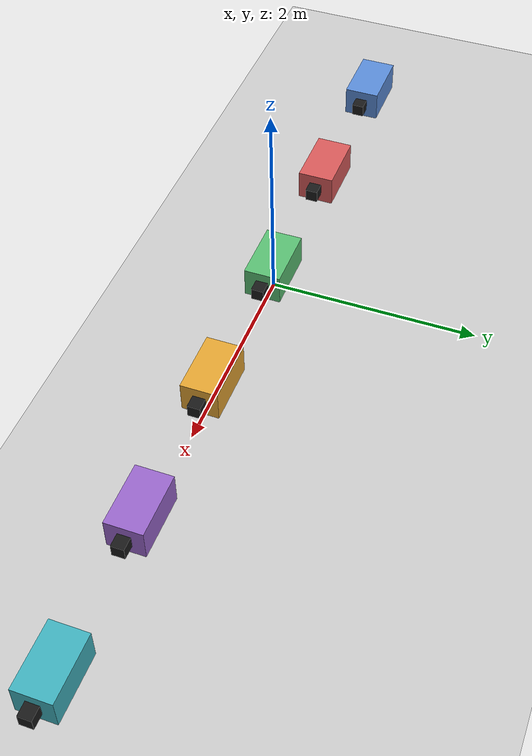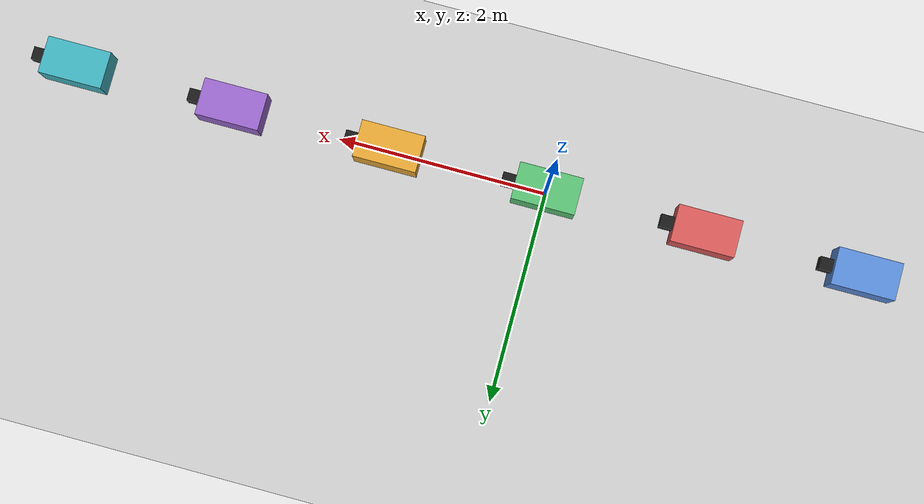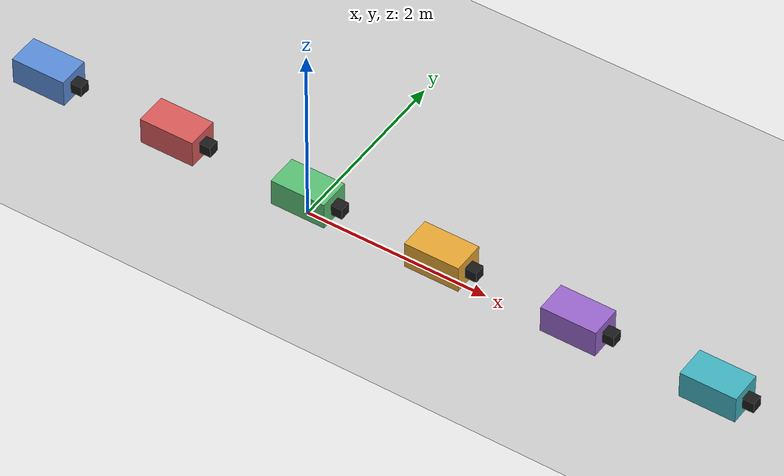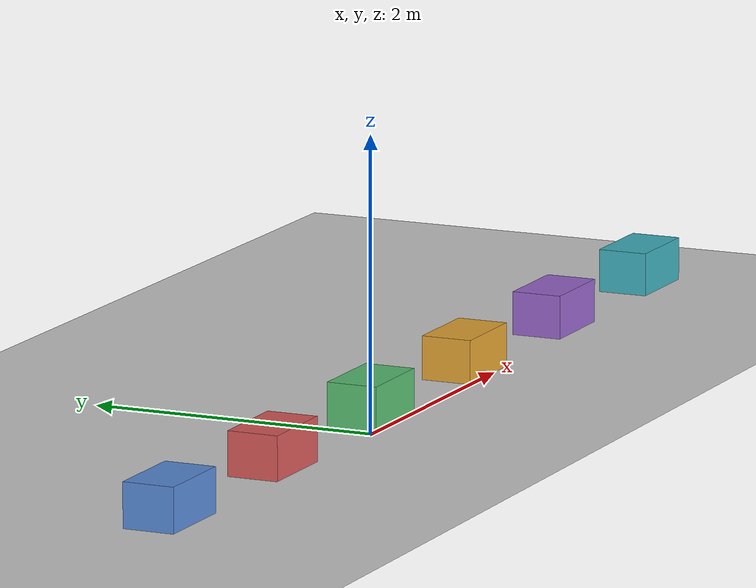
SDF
<?xml version="1.0" ?>
<sdf version="1.9">
  <world name="gama_mirror">

    <physics name="1ms" type="ignored">
      <max_step_size>0.001</max_step_size>
      <real_time_factor>1.0</real_time_factor>
    </physics>

    <plugin filename="gz-sim-physics-system" name="gz::sim::systems::Physics"/>
    <plugin filename="gz-sim-user-commands-system" name="gz::sim::systems::UserCommands"/>
    <plugin filename="gz-sim-scene-broadcaster-system" name="gz::sim::systems::SceneBroadcaster"/>

    <light type="directional" name="sun">
      <cast_shadows>true</cast_shadows>
      <pose>0 0 10 0 0 0</pose>
      <diffuse>0.8 0.8 0.8 1</diffuse>
      <specular>0.2 0.2 0.2 1</specular>
      <direction>-0.5 0.1 -0.9</direction>
    </light>

    <model name="ground_plane">
      <static>true</static>
      <link name="link">
        <collision name="collision">
          <geometry><plane><normal>0 0 1</normal><size>100 100</size></plane></geometry>
        </collision>
        <visual name="visual">
          <geometry><plane><normal>0 0 1</normal><size>100 100</size></plane></geometry>
          <material>
            <ambient>0.8 0.8 0.8 1</ambient>
            <diffuse>0.8 0.8 0.8 1</diffuse>
          </material>
        </visual>
      </link>
    </model>

    <model name="gama_0">
      <pose>-3.0 0.0 0.25 0 0 0</pose>
      <link name="body">
        <!-- No gravity: these entities are markers driven by GAMA, not physical objects -->
        <gravity>false</gravity>
        <inertial>
          <mass>1</mass>
          <inertia><ixx>0.05</ixx><iyy>0.05</iyy><izz>0.05</izz><ixy>0</ixy><ixz>0</ixz><iyz>0</iyz></inertia>
        </inertial>
        <visual name="body_visual">
          <geometry><box><size>0.6 0.35 0.3</size></box></geometry>
          <material>
            <ambient>0.35 0.55 0.85 1</ambient>
            <diffuse>0.35 0.55 0.85 1</diffuse>
          </material>
        </visual>
        <!-- A nose, so that the heading GAMA sends is readable in the 3D view -->
        <visual name="nose_visual">
          <pose>0.35 0 0 0 0 0</pose>
          <geometry><box><size>0.15 0.12 0.12</size></box></geometry>
          <material><ambient>0.1 0.1 0.1 1</ambient><diffuse>0.1 0.1 0.1 1</diffuse></material>
        </visual>
      </link>

      <plugin filename="gz-sim-velocity-control-system"
              name="gz::sim::systems::VelocityControl">
      </plugin>
    </model>
    <model name="gama_1">
      <pose>-1.5 0.0 0.25 0 0 0</pose>
      <link name="body">
        <!-- No gravity: these entities are markers driven by GAMA, not physical objects -->
        <gravity>false</gravity>
        <inertial>
          <mass>1</mass>
          <inertia><ixx>0.05</ixx><iyy>0.05</iyy><izz>0.05</izz><ixy>0</ixy><ixz>0</ixz><iyz>0</iyz></inertia>
        </inertial>
        <visual name="body_visual">
          <geometry><box><size>0.6 0.35 0.3</size></box></geometry>
          <material>
            <ambient>0.85 0.35 0.35 1</ambient>
            <diffuse>0.85 0.35 0.35 1</diffuse>
          </material>
        </visual>
        <!-- A nose, so that the heading GAMA sends is readable in the 3D view -->
        <visual name="nose_visual">
          <pose>0.35 0 0 0 0 0</pose>
          <geometry><box><size>0.15 0.12 0.12</size></box></geometry>
          <material><ambient>0.1 0.1 0.1 1</ambient><diffuse>0.1 0.1 0.1 1</diffuse></material>
        </visual>
      </link>

      <plugin filename="gz-sim-velocity-control-system"
              name="gz::sim::systems::VelocityControl">
      </plugin>
    </model>
    <model name="gama_2">
      <pose>0.0 0.0 0.25 0 0 0</pose>
      <link name="body">
        <!-- No gravity: these entities are markers driven by GAMA, not physical objects -->
        <gravity>false</gravity>
        <inertial>
          <mass>1</mass>
          <inertia><ixx>0.05</ixx><iyy>0.05</iyy><izz>0.05</izz><ixy>0</ixy><ixz>0</ixz><iyz>0</iyz></inertia>
        </inertial>
        <visual name="body_visual">
          <geometry><box><size>0.6 0.35 0.3</size></box></geometry>
          <material>
            <ambient>0.35 0.75 0.45 1</ambient>
            <diffuse>0.35 0.75 0.45 1</diffuse>
          </material>
        </visual>
        <!-- A nose, so that the heading GAMA sends is readable in the 3D view -->
        <visual name="nose_visual">
          <pose>0.35 0 0 0 0 0</pose>
          <geometry><box><size>0.15 0.12 0.12</size></box></geometry>
          <material><ambient>0.1 0.1 0.1 1</ambient><diffuse>0.1 0.1 0.1 1</diffuse></material>
        </visual>
      </link>

      <plugin filename="gz-sim-velocity-control-system"
              name="gz::sim::systems::VelocityControl">
      </plugin>
    </model>
    <model name="gama_3">
      <pose>1.5 0.0 0.25 0 0 0</pose>
      <link name="body">
        <!-- No gravity: these entities are markers driven by GAMA, not physical objects -->
        <gravity>false</gravity>
        <inertial>
          <mass>1</mass>
          <inertia><ixx>0.05</ixx><iyy>0.05</iyy><izz>0.05</izz><ixy>0</ixy><ixz>0</ixz><iyz>0</iyz></inertia>
        </inertial>
        <visual name="body_visual">
          <geometry><box><size>0.6 0.35 0.3</size></box></geometry>
          <material>
            <ambient>0.90 0.65 0.20 1</ambient>
            <diffuse>0.90 0.65 0.20 1</diffuse>
          </material>
        </visual>
        <!-- A nose, so that the heading GAMA sends is readable in the 3D view -->
        <visual name="nose_visual">
          <pose>0.35 0 0 0 0 0</pose>
          <geometry><box><size>0.15 0.12 0.12</size></box></geometry>
          <material><ambient>0.1 0.1 0.1 1</ambient><diffuse>0.1 0.1 0.1 1</diffuse></material>
        </visual>
      </link>

      <plugin filename="gz-sim-velocity-control-system"
              name="gz::sim::systems::VelocityControl">
      </plugin>
    </model>
    <model name="gama_4">
      <pose>3.0 0.0 0.25 0 0 0</pose>
      <link name="body">
        <!-- No gravity: these entities are markers driven by GAMA, not physical objects -->
        <gravity>false</gravity>
        <inertial>
          <mass>1</mass>
          <inertia><ixx>0.05</ixx><iyy>0.05</iyy><izz>0.05</izz><ixy>0</ixy><ixz>0</ixz><iyz>0</iyz></inertia>
        </inertial>
        <visual name="body_visual">
          <geometry><box><size>0.6 0.35 0.3</size></box></geometry>
          <material>
            <ambient>0.60 0.40 0.80 1</ambient>
            <diffuse>0.60 0.40 0.80 1</diffuse>
          </material>
        </visual>
        <!-- A nose, so that the heading GAMA sends is readable in the 3D view -->
        <visual name="nose_visual">
          <pose>0.35 0 0 0 0 0</pose>
          <geometry><box><size>0.15 0.12 0.12</size></box></geometry>
          <material><ambient>0.1 0.1 0.1 1</ambient><diffuse>0.1 0.1 0.1 1</diffuse></material>
        </visual>
      </link>

      <plugin filename="gz-sim-velocity-control-system"
              name="gz::sim::systems::VelocityControl">
      </plugin>
    </model>
    <model name="gama_5">
      <pose>4.5 0.0 0.25 0 0 0</pose>
      <link name="body">
        <!-- No gravity: these entities are markers driven by GAMA, not physical objects -->
        <gravity>false</gravity>
        <inertial>
          <mass>1</mass>
          <inertia><ixx>0.05</ixx><iyy>0.05</iyy><izz>0.05</izz><ixy>0</ixy><ixz>0</ixz><iyz>0</iyz></inertia>
        </inertial>
        <visual name="body_visual">
          <geometry><box><size>0.6 0.35 0.3</size></box></geometry>
          <material>
            <ambient>0.25 0.70 0.75 1</ambient>
            <diffuse>0.25 0.70 0.75 1</diffuse>
          </material>
        </visual>
        <!-- A nose, so that the heading GAMA sends is readable in the 3D view -->
        <visual name="nose_visual">
          <pose>0.35 0 0 0 0 0</pose>
          <geometry><box><size>0.15 0.12 0.12</size></box></geometry>
          <material><ambient>0.1 0.1 0.1 1</ambient><diffuse>0.1 0.1 0.1 1</diffuse></material>
        </visual>
      </link>

      <plugin filename="gz-sim-velocity-control-system"
              name="gz::sim::systems::VelocityControl">
      </plugin>
    </model>

  </world>
</sdf>
